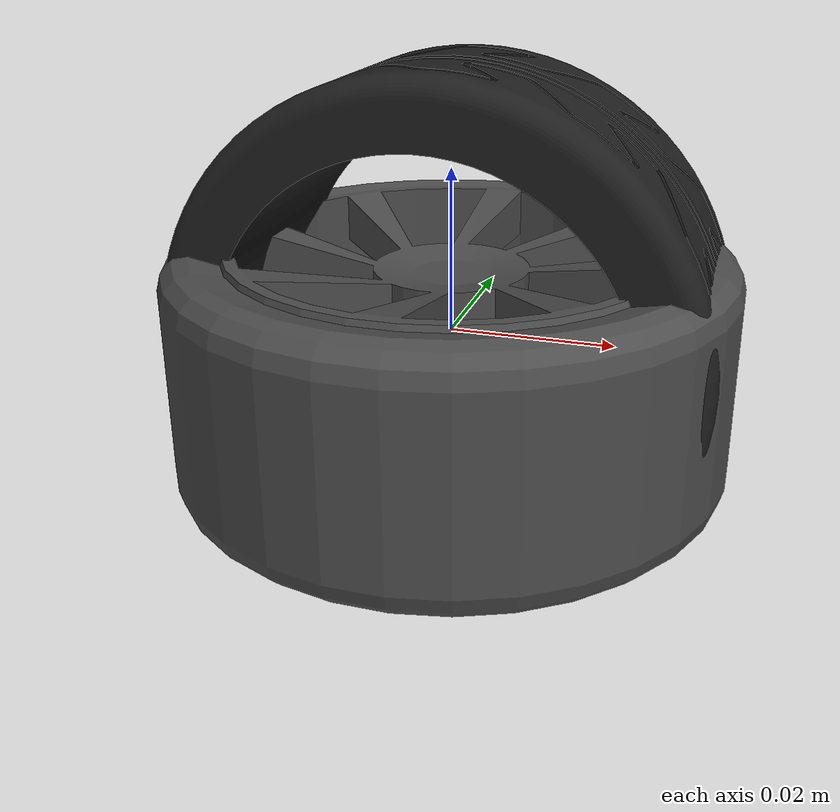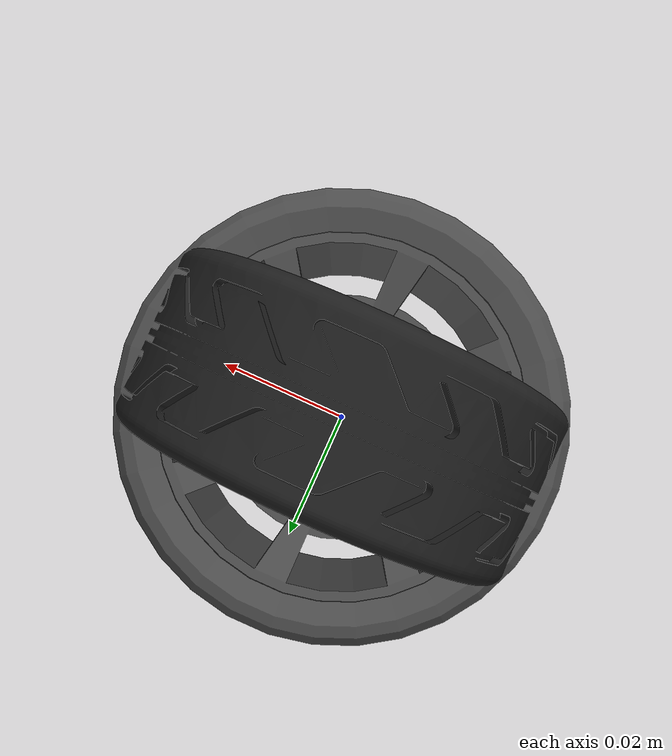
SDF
<?xml version='1.0'?>
<sdf version='1.6'>
  <model name='wheel_right'>

    <link name='link_rim'>
      <inertial>
        <mass>0.064599</mass>
        <inertia>
          <ixx>1.431e-05</ixx>
          <ixy>0</ixy>
          <ixz>0</ixz>
          <iyy>1.431e-05</iyy>
          <iyz>0</iyz>
          <izz>2.019e-05</izz>
        </inertia>
        <pose frame=''>0 0 0 0 -0 0</pose>
      </inertial>
      <pose frame=''>0.0 0.0 0 1.5708 0 0</pose>
      <gravity>1</gravity>
      <self_collide>0</self_collide>
      <kinematic>0</kinematic>
      <enable_wind>0</enable_wind>
      <visual name='visual'>
        <pose frame=''>0 0 0 0 0 0</pose>
        <geometry>
          <mesh>
            <uri>model://wheel_right/meshes/rim.dae</uri>
          </mesh>
        </geometry>
        <material>
          <lighting>1</lighting>
          <shader type='vertex'>
            <normal_map>__default__</normal_map>
          </shader>
          <ambient>0.2 0.2 0.2 1</ambient>
          <diffuse>0.3 0.3 0.3 1</diffuse>
          <specular>0.5 0.5 0.5 1</specular>
          <emissive>0.0 0.0 0.0 0.0</emissive>
        </material>
        <transparency>0</transparency>
        <cast_shadows>1</cast_shadows>
      </visual>
      <collision name='collision'>
        <laser_retro>0</laser_retro>
        <max_contacts>10</max_contacts>
        <pose frame=''>0 0 0 0 -0 0</pose>
        <geometry>
          <cylinder>
            <radius>0.025</radius>
            <length>0.028</length>
          </cylinder>
        </geometry>
        <surface>
          <friction>
            <ode>
              <mu>1</mu>
              <mu2>1</mu2>
              <fdir1>0 0 0</fdir1>
              <slip1>0</slip1>
              <slip2>0</slip2>
            </ode>
            <torsional>
              <coefficient>1</coefficient>
              <patch_radius>0</patch_radius>
              <surface_radius>0</surface_radius>
              <use_patch_radius>1</use_patch_radius>
              <ode>
                <slip>0</slip>
              </ode>
            </torsional>
          </friction>
          <bounce>
            <restitution_coefficient>0</restitution_coefficient>
            <threshold>1e+06</threshold>
          </bounce>
          <contact>
            <collide_without_contact>0</collide_without_contact>
            <collide_without_contact_bitmask>1</collide_without_contact_bitmask>
            <collide_bitmask>1</collide_bitmask>
            <ode>
              <soft_cfm>0</soft_cfm>
              <soft_erp>0.2</soft_erp>
              <kp>1e+07</kp>
              <kd>1</kd>
              <max_vel>0.01</max_vel>
              <min_depth>0</min_depth>
            </ode>
            <bullet>
              <split_impulse>1</split_impulse>
              <split_impulse_penetration_threshold>-0.01</split_impulse_penetration_threshold>
              <soft_cfm>0</soft_cfm>
              <soft_erp>0.2</soft_erp>
              <kp>1e+07</kp>
              <kd>1</kd>
            </bullet>
          </contact>
        </surface>
      </collision>
    </link>

    <link name='link_tire'>
      <inertial>
        <mass>0.109172</mass>
        <inertia>
          <ixx>3.596e-05</ixx>
          <ixy>0</ixy>
          <ixz>0</ixz>
          <iyy>3.596e-05</iyy>
          <iyz>0</iyz>
          <izz>5.766e-05</izz>
        </inertia>
        <pose frame=''>0 0 0 0 -0 0</pose>
      </inertial>
      <pose frame=''>0.0 0.0 0 1.5708 0 0</pose>
      <gravity>1</gravity>
      <self_collide>0</self_collide>
      <kinematic>0</kinematic>
      <enable_wind>0</enable_wind>
      <visual name='visual'>
        <pose frame=''>0 0 0 0 -0 0</pose>
        <geometry>
          <mesh>
            <uri>model://wheel_right/meshes/tire.dae</uri>
          </mesh>
        </geometry>
        <material>
          <lighting>1</lighting>
          <script>
            <uri>file://media/materials/scripts/gazebo.material</uri>
            <name>Gazebo/FlatBlack</name>
          </script>
          <shader type='vertex'>
            <normal_map>__default__</normal_map>
          </shader>
          <ambient>0.1 0.1 0.1 1</ambient>
          <diffuse>0.15 0.15 0.15 1</diffuse>
          <specular>0.001 0.001 0.001 1</specular>
          <emissive>0.0 0.0 0.0 0.0</emissive>
        </material>
        <transparency>0</transparency>
        <cast_shadows>1</cast_shadows>
      </visual>
      <collision name='collision'>
        <laser_retro>0</laser_retro>
        <max_contacts>10</max_contacts>
        <pose frame=''>0 0 0 0 -0 0</pose>
        <geometry>
          <cylinder>
            <radius>0.0325</radius>
            <length>0.028</length>
          </cylinder>
        </geometry>
        <surface>
          <friction>
            <ode>
              <mu>1e+0</mu>
              <mu2>1e+0</mu2>
              <fdir1>0 0 0</fdir1>
              <slip1>0</slip1>
              <slip2>0</slip2>
            </ode>
            <torsional>
              <coefficient>1</coefficient>
              <patch_radius>0</patch_radius>
              <surface_radius>0</surface_radius>
              <use_patch_radius>1</use_patch_radius>
              <ode>
                <slip>0</slip>
              </ode>
            </torsional>
          </friction>
          <bounce>
            <restitution_coefficient>0</restitution_coefficient>
            <threshold>1e+06</threshold>
          </bounce>
          <contact>
            <collide_without_contact>0</collide_without_contact>
            <collide_without_contact_bitmask>1</collide_without_contact_bitmask>
            <collide_bitmask>1</collide_bitmask>
            <ode>
              <soft_cfm>0</soft_cfm>
              <soft_erp>0.2</soft_erp>
              <kp>1e+07</kp>
              <kd>1</kd>
              <max_vel>0.01</max_vel>
              <min_depth>0</min_depth>
            </ode>
            <bullet>
              <split_impulse>1</split_impulse>
              <split_impulse_penetration_threshold>-0.01</split_impulse_penetration_threshold>
              <soft_cfm>0</soft_cfm>
              <soft_erp>0.2</soft_erp>
              <kp>1e+07</kp>
              <kd>1</kd>
            </bullet>
          </contact>
        </surface>
      </collision>
    </link>

    <joint name='joint' type='fixed'>
      <parent>link_rim</parent>
      <child>link_tire</child>
      <pose frame=''>0 0 0 0 -0 0</pose>
      <physics>
        <ode>
          <limit>
            <cfm>0</cfm>
            <erp>0.2</erp>
          </limit>
          <suspension>
            <cfm>0</cfm>
            <erp>0.2</erp>
          </suspension>
        </ode>
      </physics>
    </joint>

  </model>
</sdf>
